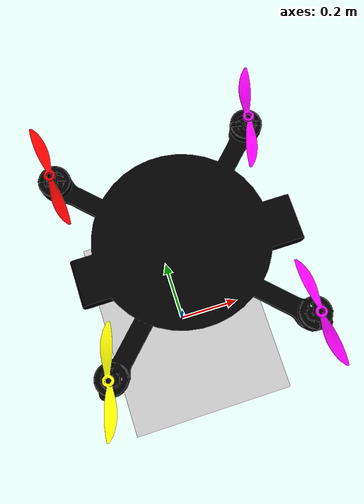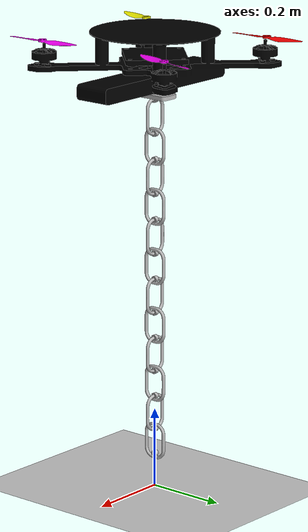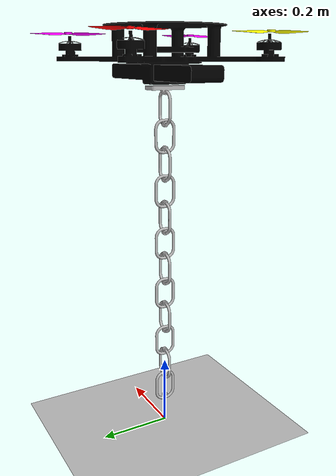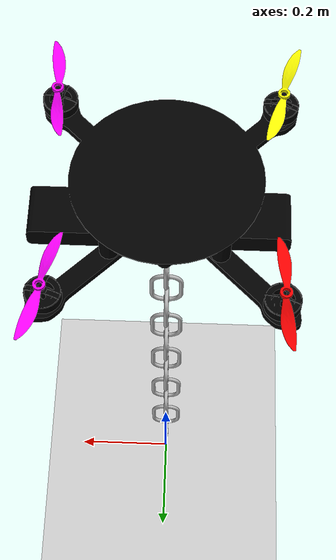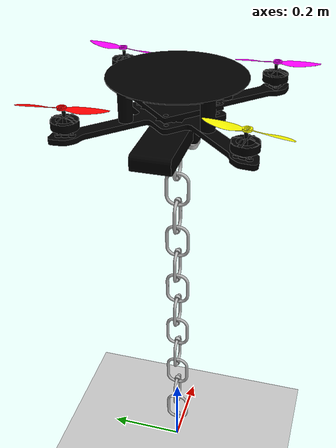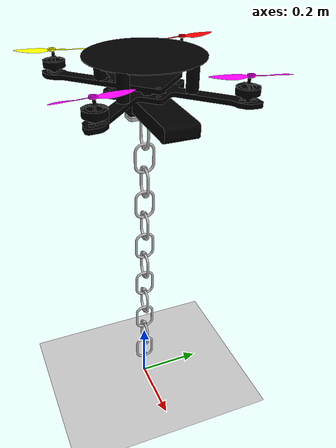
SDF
<?xml version="1.0" ?>
<!--
  Demo world with a widget displaying images coming from a camera sensor.
-->
<sdf version="1.6">
  <world name="pico">
    <physics name="1ms" type="ignored">
      <max_step_size>0.01</max_step_size>
      <real_time_factor>1.0</real_time_factor>
    </physics>
    <plugin
      filename="gz-sim-physics-system"
      name="gz::sim::systems::Physics">
    </plugin>
    <plugin
      filename="gz-sim-sensors-system"
      name="gz::sim::systems::Sensors">
      <render_engine>ogre2</render_engine>
    </plugin>
    <plugin
      filename="gz-sim-user-commands-system"
      name="gz::sim::systems::UserCommands">
    </plugin>
    <plugin
      filename="gz-sim-scene-broadcaster-system"
      name="gz::sim::systems::SceneBroadcaster">
    </plugin>

    <scene>
      <ambient>1.0 1.0 1.0</ambient>
      <background>0.8 0.8 0.8</background>
      <grid>true</grid>
    </scene>

    <gui fullscreen="0">

      <!-- 3D scene -->
      <plugin filename="MinimalScene" name="3D View">
        <gz-gui>
          <title>3D View</title>
          <property type="bool" key="showTitleBar">false</property>
          <property type="string" key="state">docked</property>
        </gz-gui>

        <engine>ogre2</engine>
        <scene>scene</scene>
        <ambient_light>0.4 0.4 0.4</ambient_light>
        <background_color>0.8 0.8 0.8</background_color>
        <camera_pose>-6 0 6 0 0.5 0</camera_pose>
      </plugin>

      <!-- Plugins that add functionality to the scene -->

      <plugin filename="GzSceneManager" name="Scene Manager">
        <gz-gui>
          <property key="resizable" type="bool">false</property>
          <property key="width" type="double">5</property>
          <property key="height" type="double">5</property>
          <property key="state" type="string">floating</property>
          <property key="showTitleBar" type="bool">false</property>
        </gz-gui>
      </plugin>
      <plugin filename="InteractiveViewControl" name="Interactive view control">
        <gz-gui>
          <property key="resizable" type="bool">false</property>
          <property key="width" type="double">5</property>
          <property key="height" type="double">5</property>
          <property key="state" type="string">floating</property>
          <property key="showTitleBar" type="bool">false</property>
        </gz-gui>
      </plugin>

      <!-- World statistics -->
      <plugin filename="WorldStats" name="World stats">

        <sim_time>true</sim_time>
        <real_time>true</real_time>
        <real_time_factor>true</real_time_factor>
        <iterations>true</iterations>
      </plugin>

    </gui>

     <model name="ground_plane">
      <static>true</static>
      <link name="link">
        <collision name="collision">
          <geometry>
            <plane>
              <normal>0 0 1</normal>
              <size>100 100</size>
            </plane>
          </geometry>
        </collision>
        <visual name="visual">
          <geometry>
            <plane>
              <normal>0 0 1</normal>
              <size>100 100</size>
            </plane>
          </geometry>
          <material>
            <ambient>0.8 0.8 0.8 1</ambient>
            <diffuse>0.8 0.8 0.8 1</diffuse>
            <specular>0.8 0.8 0.8 1</specular>
          </material>
        </visual>
      </link>
    </model>

    <include>
      <uri>model://swift_pico_chain</uri>
      <name>swift_pico</name>
      <pose>0 0 1.15 0 0 0</pose>
    </include>

  </world>
</sdf>

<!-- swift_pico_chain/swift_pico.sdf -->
<sdf version='1.6'>
  <model name="swift_pico">
    <pose>0 0 0 0 0 0</pose>
    <link name='swift_pico/base_link'>
      <pose frame=''>0 0 0 0 -0 0</pose>
      <inertial>
        <pose frame=''>0 0 0 0 -0 0</pose>
        <mass>1.5</mass>
        <inertia>
          <ixx>0.0347563</ixx>
          <ixy>0</ixy>
          <ixz>0</ixz>
          <iyy>0.07</iyy>
          <iyz>0</iyz>
          <izz>0.0977</izz>
        </inertia>
      </inertial>
      <collision name='swift_pico/base_link_inertia_collision'>
        <pose frame=''>0 0 -0.12 0 -0 0</pose>
        <geometry>
          <box>
            <size>0.47 0.47 0.11</size>
          </box>
        </geometry>
      </collision>
      <visual name='swift_pico/base_link_inertia_visual'>
        <pose frame=''>0 0 0 0 -0 0</pose>
        <geometry>
          <mesh>
            <scale>5 5 5</scale>
            <uri>model://swift_pico/meshes/base_link.dae</uri>
          </mesh>
        </geometry>
        <material>
            <ambient>0 0 0 1</ambient>
            <diffuse>0 0 0 1</diffuse>
            <specular>0 0 0 1</specular>
          </material>
      </visual>
    </link>

     <joint name="chain_joint" type="fixed">
      <origin xyz="0 0 -0.15" rpy="3.14 0 0" />
      <child>b_link</child>
      <parent>swift_pico/base_link</parent>
		</joint>

    <link name='b_link'>
      <pose frame=''>0 0 -0.15 3.14 0 0</pose>
      <inertial>
        <pose frame=''>0 0 0 0 0 0</pose>
        <mass>0.05</mass>
        <inertia>
          <ixx>3.1137E-05</ixx>
          <ixy>0</ixy>
          <ixz>0</ixz>
          <iyy>3.1137E-05</iyy>
          <iyz>0</iyz>
          <izz>3.1137E-05</izz>
        </inertia>
      </inertial>

      <visual name='b_link_visual'>
        <pose frame=''> 0 0 0 0 0 0</pose>
        <geometry>
          <mesh>
            <scale>1 1 1</scale>
            <uri>model://swift_pico/meshes/b_link.dae</uri>
          </mesh>
        </geometry>
      </visual>
    </link>

  <!-- ################### link ##################-->
    <joint name='j' type='revolute'>
      <origin xyz="0 0 -0.25" rpy="0 0 0" />
      <child>link</child>
      <parent>b_link</parent>
      <axis>
        <xyz>-1 0 0</xyz>
      </axis>
    </joint>

    <link name='link'>
      <pose frame=''>0 0 -0.25 0 -0 0</pose>
      <inertial>
        <pose frame=''>0 0 -0 0 -0 0</pose>
        <mass>0.05</mass>
        <inertia>
          <ixx>1.119E-05</ixx>
          <ixy>0</ixy>
          <ixz>0</ixz>
          <iyy>1.0117E-05</iyy>
          <iyz>0</iyz>
          <izz>1.3292E-05</izz>
        </inertia>
      </inertial>

      <visual name='link_visual'>
        <pose frame=''> 0 0 -0 0 -0 0</pose>
        <geometry>
          <mesh>
            <scale>1 1 1</scale>
            <uri>model://swift_pico/meshes/link.dae</uri>
          </mesh>
        </geometry>

      </visual>

    </link>
  <!-- ################### link ##################-->

  <!-- ################### link 1 ##################-->
    <joint name='j0' type='revolute'>
      <origin xyz="0 0 -0.315" rpy="0 0 0" />
      <child>link_0</child>
      <parent>link</parent>
      <axis>
        <xyz>-1 0 0</xyz>
      </axis>
    </joint>

    <link name='link_0'>
      <pose frame=''>0 0 -0.315 0 -0 0</pose>
      <inertial>
        <pose frame=''>0 0 -0 0 -0 0</pose>
        <mass>0.05</mass>
        <inertia>
          <ixx>1.119E-05</ixx>
          <ixy>0</ixy>
          <ixz>0</ixz>
          <iyy>1.0117E-05</iyy>
          <iyz>0</iyz>
          <izz>1.3292E-05</izz>
        </inertia>
      </inertial>

      <visual name='link_0_visual'>
        <pose frame=''> 0 0 -0 0 -0 0</pose>
        <geometry>
          <mesh>
            <scale>1 1 1</scale>
            <uri>model://swift_pico/meshes/link_0.dae</uri>
          </mesh>
        </geometry>

      </visual>

    </link>
  <!-- ################### link 1 ##################-->

  <!-- ################### link 1 to 10 ##################-->
<joint name='j1' type='revolute'>
  <origin xyz="0 0 -0.4" rpy="0 0 0" />
  <child>link_1</child>
  <parent>link_0</parent>
  <axis>
    <xyz>-1 0 0</xyz>
  </axis>
</joint>

<link name='link_1'>
  <pose frame=''>0 0 -0.4 0 -0 0</pose>
  <inertial>
    <pose frame=''>0 0 -0 0 -0 0</pose>
    <mass>0.05</mass>
    <inertia>
      <ixx>1.119E-05</ixx>
      <ixy>0</ixy>
      <ixz>0</ixz>
      <iyy>1.0117E-05</iyy>
      <iyz>0</iyz>
      <izz>1.3292E-05</izz>
    </inertia>
  </inertial>
  <visual name='link_1_visual'>
    <pose frame=''>0 0 -0 0 -0 0</pose>
    <geometry>
      <mesh>
        <scale>1 1 1</scale>
        <uri>model://swift_pico/meshes/link_1.dae</uri>
      </mesh>
    </geometry>
  </visual>
</link>

<joint name='j2' type='revolute'>
  <origin xyz="0 0 -0.465" rpy="0 0 0" />
  <child>link_2</child>
  <parent>link_1</parent>
  <axis>
    <xyz>-1 0 0</xyz>
  </axis>
</joint>

<link name='link_2'>
  <pose frame=''>0 0 -0.465 0 -0 0</pose>
  <inertial>
    <pose frame=''>0 0 -0 0 -0 0</pose>
    <mass>0.05</mass>
    <inertia>
      <ixx>1.119E-05</ixx>
      <ixy>0</ixy>
      <ixz>0</ixz>
      <iyy>1.0117E-05</iyy>
      <iyz>0</iyz>
      <izz>1.3292E-05</izz>
    </inertia>
  </inertial>
  <visual name='link_2_visual'>
    <pose frame=''>0 0 -0 0 -0 0</pose>
    <geometry>
      <mesh>
        <scale>1 1 1</scale>
        <uri>model://swift_pico/meshes/link_2.dae</uri>
      </mesh>
    </geometry>
  </visual>
</link>

<joint name='j3' type='revolute'>
  <origin xyz="0 0 -0.550" rpy="0 0 0" />
  <child>link_3</child>
  <parent>link_2</parent>
  <axis>
    <xyz>-1 0 0</xyz>
  </axis>
</joint>

<link name='link_3'>
  <pose frame=''>0 0 -0.550 0 -0 0</pose>
  <inertial>
    <pose frame=''>0 0 -0 0 -0 0</pose>
    <mass>0.05</mass>
    <inertia>
      <ixx>1.119E-05</ixx>
      <ixy>0</ixy>
      <ixz>0</ixz>
      <iyy>1.0117E-05</iyy>
      <iyz>0</iyz>
      <izz>1.3292E-05</izz>
    </inertia>
  </inertial>
  <visual name='link_3_visual'>
    <pose frame=''>0 0 -0 0 -0 0</pose>
    <geometry>
      <mesh>
        <scale>1 1 1</scale>
        <uri>model://swift_pico/meshes/link_3.dae</uri>
      </mesh>
    </geometry>
  </visual>
</link>

<joint name='j4' type='revolute'>
  <origin xyz="0 0 -0.615" rpy="0 0 0" />
  <child>link_4</child>
  <parent>link_3</parent>
  <axis>
    <xyz>-1 0 0</xyz>
  </axis>
</joint>

<link name='link_4'>
  <pose frame=''>0 0 -0.615 0 -0 0</pose>
  <inertial>
    <pose frame=''>0 0 -0 0 -0 0</pose>
    <mass>0.05</mass>
    <inertia>
      <ixx>1.119E-05</ixx>
      <ixy>0</ixy>
      <ixz>0</ixz>
      <iyy>1.0117E-05</iyy>
      <iyz>0</iyz>
      <izz>1.3292E-05</izz>
    </inertia>
  </inertial>
  <visual name='link_4_visual'>
    <pose frame=''>0 0 -0 0 -0 0</pose>
    <geometry>
      <mesh>
        <scale>1 1 1</scale>
        <uri>model://swift_pico/meshes/link_4.dae</uri>
      </mesh>
    </geometry>
  </visual>
</link>

<joint name='j5' type='revolute'>
  <origin xyz="0 0 -0.70" rpy="0 0 0" />
  <child>link_5</child>
  <parent>link_4</parent>
  <axis>
    <xyz>-1 0 0</xyz>
  </axis>
</joint>

<link name='link_5'>
  <pose frame=''>0 0 -0.70 0 -0 0</pose>
  <inertial>
    <pose frame=''>0 0 -0 0 -0 0</pose>
    <mass>0.05</mass>
    <inertia>
      <ixx>1.119E-05</ixx>
      <ixy>0</ixy>
      <ixz>0</ixz>
      <iyy>1.0117E-05</iyy>
      <iyz>0</iyz>
      <izz>1.3292E-05</izz>
    </inertia>
  </inertial>
  <visual name='link_5_visual'>
    <pose frame=''>0 0 -0 0 -0 0</pose>
    <geometry>
      <mesh>
        <scale>1 1 1</scale>
        <uri>model://swift_pico/meshes/link_5.dae</uri>
      </mesh>
    </geometry>
  </visual>
</link>

<joint name='j6' type='revolute'>
  <origin xyz="0 0 -0.765" rpy="0 0 0" />
  <child>link_6</child>
  <parent>link_5</parent>
  <axis>
    <xyz>-1 0 0</xyz>
  </axis>
</joint>

<link name='link_6'>
  <pose frame=''>0 0 -0.765 0 -0 0</pose>
  <inertial>
    <pose frame=''>0 0 -0 0 -0 0</pose>
    <mass>0.05</mass>
    <inertia>
      <ixx>1.119E-05</ixx>
      <ixy>0</ixy>
      <ixz>0</ixz>
      <iyy>1.0117E-05</iyy>
      <iyz>0</iyz>
      <izz>1.3292E-05</izz>
    </inertia>
  </inertial>
  <visual name='link_6_visual'>
    <pose frame=''>0 0 -0 0 -0 0</pose>
    <geometry>
      <mesh>
        <scale>1 1 1</scale>
        <uri>model://swift_pico/meshes/link_6.dae</uri>
      </mesh>
    </geometry>
  </visual>
</link>

<joint name='j7' type='revolute'>
  <origin xyz="0 0 -0.850" rpy="0 0 0" />
  <child>link_7</child>
  <parent>link_6</parent>
  <axis>
    <xyz>-1 0 0</xyz>
  </axis>
</joint>

<link name='link_7'>
  <pose frame=''>0 0 -0.85 0 -0 0</pose>
  <inertial>
    <pose frame=''>0 0 -0 0 -0 0</pose>
    <mass>0.05</mass>
    <inertia>
      <ixx>1.119E-05</ixx>
      <ixy>0</ixy>
      <ixz>0</ixz>
      <iyy>1.0117E-05</iyy>
      <iyz>0</iyz>
      <izz>1.3292E-05</izz>
    </inertia>
  </inertial>
  <visual name='link_7_visual'>
    <pose frame=''>0 0 -0 0 -0 0</pose>
    <geometry>
      <mesh>
        <scale>1 1 1</scale>
        <uri>model://swift_pico/meshes/link_7.dae</uri>
      </mesh>
    </geometry>
  </visual>
</link>

<joint name='j8' type='revolute'>
  <origin xyz="0 0 -0.915" rpy="0 0 0" />
  <child>link_8</child>
  <parent>link_7</parent>
  <axis>
    <xyz>-1 0 0</xyz>
  </axis>
</joint>

<link name='link_8'>
  <pose frame=''>0 0 -0.915 0 -0 0</pose>
  <inertial>
    <pose frame=''>0 0 -0 0 -0 0</pose>
    <mass>0.05</mass>
    <inertia>
      <ixx>1.119E-05</ixx>
      <ixy>0</ixy>
      <ixz>0</ixz>
      <iyy>1.0117E-05</iyy>
      <iyz>0</iyz>
      <izz>1.3292E-05</izz>
    </inertia>
  </inertial>
  <visual name='link_8_visual'>
    <pose frame=''>0 0 -0 0 -0 0</pose>
    <geometry>
      <mesh>
        <scale>1 1 1</scale>
        <uri>model://swift_pico/meshes/link_8.dae</uri>
      </mesh>
    </geometry>
  </visual>
</link>

<joint name='j9' type='revolute'>
  <origin xyz="0 0 -1.0" rpy="0 0 0" />
  <child>link_9</child>
  <parent>link_8</parent>
  <axis>
    <xyz>-1 0 0</xyz>
  </axis>
</joint>

<link name='link_9'>
  <pose frame=''>0 0 -1.0 0 -0 0</pose>
  <inertial>
    <pose frame=''>0 0 -0 0 -0 0</pose>
    <mass>0.05</mass>
    <inertia>
      <ixx>1.119E-05</ixx>
      <ixy>0</ixy>
      <ixz>0</ixz>
      <iyy>1.0117E-05</iyy>
      <iyz>0</iyz>
      <izz>1.3292E-05</izz>
    </inertia>
  </inertial>
  <visual name='link_9_visual'>
    <pose frame=''>0 0 -0 0 -0 0</pose>
    <geometry>
      <mesh>
        <scale>1 1 1</scale>
        <uri>model://swift_pico/meshes/link_9.dae</uri>
      </mesh>
    </geometry>
  </visual>
</link>

<joint name='j10' type='revolute'>
  <origin xyz="0 0 -1.065" rpy="0 0 0" />
  <child>link_10</child>
  <parent>link_9</parent>
  <axis>
    <xyz>-1 0 0</xyz>
  </axis>
</joint>

<link name='link_10'>
  <pose frame=''>0 0 -1.065 0 -0 0</pose>
  <inertial>
    <pose frame=''>0 0 -0 0 -0 0</pose>
    <mass>0.05</mass>
    <inertia>
      <ixx>1.119E-05</ixx>
      <ixy>0</ixy>
      <ixz>0</ixz>
      <iyy>1.0117E-05</iyy>
      <iyz>0</iyz>
      <izz>1.3292E-05</izz>
    </inertia>
  </inertial>
  <visual name='link_10_visual'>
    <pose frame=''>0 0 -0 0 -0 0</pose>
    <geometry>
      <mesh>
        <scale>1 1 1</scale>
        <uri>model://swift_pico/meshes/link_10.dae</uri>
      </mesh>
    </geometry>
  </visual>
</link>

    <link name='swift_pico/m1'>
      <pose frame=''>0.19 -0.19 -0.12 0 -0 0</pose>
      <inertial>
        <pose frame=''>0 0 0.1 0 -0 0</pose>
        <mass>0.005</mass>
        <inertia>
          <ixx>9.75e-07</ixx>
          <ixy>0</ixy>
          <ixz>0</ixz>
          <iyy>4.17041e-05</iyy>
          <iyz>0</iyz>
          <izz>4.26041e-05</izz>
        </inertia>
      </inertial>
      <collision name='swift_pico/m1_collision'>
        <pose frame=''>0 0 0.1 0 -0 0</pose>
        <geometry>
          <cylinder>
            <length>0.005</length>
            <radius>0.1</radius>
          </cylinder>
        </geometry>
        <surface>
          <contact>
            <ode/>
          </contact>
          <friction>
            <ode/>
          </friction>
        </surface>
      </collision>
      <visual name='swift_pico/m1_visual'>
        <pose frame=''>0 0 0.1 0 -0 0</pose>
        <geometry>
          <mesh>
            <scale>5 5 5</scale>
            <uri>model://swift_pico/meshes/m1_link.dae</uri>
          </mesh>
        </geometry>
        <material>
            <ambient>1 0 1 1</ambient>
            <diffuse>1 0 1 1</diffuse>
            <specular>1 0 1 1</specular>
          </material>
      </visual>
      <gravity>1</gravity>
      <velocity_decay/>
    </link>
    <joint name='swift_pico/m1_joint' type='revolute'>
      <child>swift_pico/m1</child>
      <parent>swift_pico/base_link</parent>
      <axis>
        <xyz>0 0 1</xyz>
        <limit>
          <lower>-1e+16</lower>
          <upper>1e+16</upper>
        </limit>
        <dynamics>
          <spring_reference>0</spring_reference>
          <spring_stiffness>0</spring_stiffness>
        </dynamics>
        <use_parent_model_frame>1</use_parent_model_frame>
      </axis>
    </joint>
    <link name='swift_pico/m2'>
      <pose frame=''>-0.19 0.19 -0.12 0 -0 0</pose>
      <inertial>
        <pose frame=''>0 0 0.1 0 -0 0</pose>
        <mass>0.005</mass>
        <inertia>
          <ixx>9.75e-07</ixx>
          <ixy>0</ixy>
          <ixz>0</ixz>
          <iyy>4.17041e-05</iyy>
          <iyz>0</iyz>
          <izz>4.26041e-05</izz>
        </inertia>
      </inertial>
      <collision name='swift_pico/m2_collision'>
        <pose frame=''>0 0 0.1 0 -0 0</pose>
        <geometry>
          <cylinder>
            <length>0.005</length>
            <radius>0.1</radius>
          </cylinder>
        </geometry>
        <surface>
          <contact>
            <ode/>
          </contact>
          <friction>
            <ode/>
          </friction>
        </surface>
      </collision>
      <visual name='swift_pico/m2_visual'>
        <pose frame=''>0 0 0.1 0 -0 0</pose>
        <geometry>
          <mesh>
            <scale>5 5 5</scale>
            <uri>model://swift_pico/meshes/m1_link.dae</uri>
          </mesh>
        </geometry>
        <material>
            <ambient>1 0 0 1</ambient>
            <diffuse>1 0 0 1</diffuse>
            <specular>1 0 0 1</specular>
          </material>
      </visual>
      <gravity>1</gravity>
      <velocity_decay/>
    </link>
    <joint name='swift_pico/m2_joint' type='revolute'>
      <child>swift_pico/m2</child>
      <parent>swift_pico/base_link</parent>
      <axis>
        <xyz>0 0 1</xyz>
        <limit>
          <lower>-1e+16</lower>
          <upper>1e+16</upper>
        </limit>
        <dynamics>
          <spring_reference>0</spring_reference>
          <spring_stiffness>0</spring_stiffness>
        </dynamics>
        <use_parent_model_frame>1</use_parent_model_frame>
      </axis>
    </joint>
    <link name='swift_pico/m3'>
      <pose frame=''>0.19 0.19 -0.12 0 -0 0</pose>
      <inertial>
        <pose frame=''>0 0 0.1 0 -0 0</pose>
        <mass>0.005</mass>
        <inertia>
          <ixx>9.75e-07</ixx>
          <ixy>0</ixy>
          <ixz>0</ixz>
          <iyy>4.17041e-05</iyy>
          <iyz>0</iyz>
          <izz>4.26041e-05</izz>
        </inertia>
      </inertial>
      <collision name='swift_pico/m3_collision'>
        <pose frame=''>0 0 0.1 0 -0 0</pose>
        <geometry>
          <cylinder>
            <length>0.005</length>
            <radius>0.1</radius>
          </cylinder>
        </geometry>
        <surface>
          <contact>
            <ode/>
          </contact>
          <friction>
            <ode/>
          </friction>
        </surface>
      </collision>
      <visual name='swift_pico/m3_visual'>
        <pose frame=''>0 0 0.1 0 -0 0</pose>
        <geometry>
          <mesh>
            <scale>5 5 5</scale>
            <uri>model://swift_pico/meshes/m4_link.dae</uri>
          </mesh>
        </geometry>
        <material>
            <ambient>1 0 1 1</ambient>
            <diffuse>1 0 1 1</diffuse>
            <specular>1 0 1 1</specular>
          </material>
      </visual>
      <gravity>1</gravity>
      <velocity_decay/>
    </link>
    <joint name='swift_pico/m3_joint' type='revolute'>
      <child>swift_pico/m3</child>
      <parent>swift_pico/base_link</parent>
      <axis>
        <xyz>0 0 1</xyz>
        <limit>
          <lower>-1e+16</lower>
          <upper>1e+16</upper>
        </limit>
        <dynamics>
          <spring_reference>0</spring_reference>
          <spring_stiffness>0</spring_stiffness>
        </dynamics>
        <use_parent_model_frame>1</use_parent_model_frame>
      </axis>
    </joint>
    <link name='swift_pico/m4'>
      <pose frame=''>-0.19 -0.19 -0.12 0 -0 0</pose>
      <inertial>
        <pose frame=''>0 0 0.1 0 -0 0</pose>
        <mass>0.005</mass>
        <inertia>
          <ixx>9.75e-07</ixx>
          <ixy>0</ixy>
          <ixz>0</ixz>
          <iyy>4.17041e-05</iyy>
          <iyz>0</iyz>
          <izz>4.26041e-05</izz>
        </inertia>
      </inertial>
      <collision name='swift_pico/m4_collision'>
        <pose frame=''>0 0 0.1 0 -0 0</pose>
        <geometry>
          <cylinder>
            <length>0.005</length>
            <radius>0.1</radius>
          </cylinder>
        </geometry>
        <surface>
          <contact>
            <ode/>
          </contact>
          <friction>
            <ode/>
          </friction>
        </surface>
      </collision>
      <visual name='swift_pico/m4_visual'>
        <pose frame=''>0 0 0.1 0 -0 0</pose>
        <geometry>
          <mesh>
            <scale>5 5 5</scale>
            <uri>model://swift_pico/meshes/m4_link.dae</uri>
          </mesh>
        </geometry>
       <material>
          <ambient>1 1 0 1</ambient>
          <diffuse>1 1 0 1</diffuse>
          <specular>1 1 0 1</specular>
      </material>
      </visual>
      <gravity>1</gravity>
      <velocity_decay/>
    </link>
    <joint name='swift_pico/m4_joint' type='revolute'>
      <child>swift_pico/m4</child>
      <parent>swift_pico/base_link</parent>
      <axis>
        <xyz>0 0 1</xyz>
        <limit>
          <lower>-1e+16</lower>
          <upper>1e+16</upper>
        </limit>
        <dynamics>
          <spring_reference>0</spring_reference>
          <spring_stiffness>0</spring_stiffness>
        </dynamics>
        <use_parent_model_frame>1</use_parent_model_frame>
      </axis>
    </joint>
      <plugin
        filename="ignition-gazebo-multicopter-motor-model-system"
        name="gz::sim::systems::MulticopterMotorModel">
        <robotNamespace>rotors</robotNamespace>
        <jointName>swift_pico/m1_joint</jointName>
        <linkName>swift_pico/m1</linkName>
        <turningDirection>ccw</turningDirection>
        <timeConstantUp>0.0125</timeConstantUp>
        <timeConstantDown>0.025</timeConstantDown>
        <maxRotVelocity>800.0</maxRotVelocity>
        <motorConstant>8.54858e-06</motorConstant>
        <momentConstant>0.016</momentConstant>
        <commandSubTopic>command/motor_speed</commandSubTopic>
        <motorNumber>0</motorNumber>
        <rotorDragCoefficient>8.06428e-05</rotorDragCoefficient>
        <rollingMomentCoefficient>1e-06</rollingMomentCoefficient>
        <motorSpeedPubTopic>motor_speed/0</motorSpeedPubTopic>
        <rotorVelocitySlowdownSim>10</rotorVelocitySlowdownSim>
        <motorType>velocity</motorType>
      </plugin>
      <plugin
        filename="ignition-gazebo-multicopter-motor-model-system"
        name="gz::sim::systems::MulticopterMotorModel">
        <robotNamespace>rotors</robotNamespace>
        <jointName>swift_pico/m2_joint</jointName>
        <linkName>swift_pico/m2</linkName>
        <turningDirection>ccw</turningDirection>
        <timeConstantUp>0.0125</timeConstantUp>
        <timeConstantDown>0.025</timeConstantDown>
        <maxRotVelocity>800.0</maxRotVelocity>
        <motorConstant>8.54858e-06</motorConstant>
        <momentConstant>0.016</momentConstant>
        <commandSubTopic>command/motor_speed</commandSubTopic>
        <motorNumber>1</motorNumber>
        <rotorDragCoefficient>8.06428e-05</rotorDragCoefficient>
        <rollingMomentCoefficient>1e-06</rollingMomentCoefficient>
        <motorSpeedPubTopic>motor_speed/1</motorSpeedPubTopic>
        <rotorVelocitySlowdownSim>10</rotorVelocitySlowdownSim>
        <motorType>velocity</motorType>
      </plugin>
      <plugin
        filename="ignition-gazebo-multicopter-motor-model-system"
        name="gz::sim::systems::MulticopterMotorModel">
        <robotNamespace>rotors</robotNamespace>
        <jointName>swift_pico/m3_joint</jointName>
        <linkName>swift_pico/m3</linkName>
        <turningDirection>cw</turningDirection>
        <timeConstantUp>0.0125</timeConstantUp>
        <timeConstantDown>0.025</timeConstantDown>
        <maxRotVelocity>800.0</maxRotVelocity>
        <motorConstant>8.54858e-06</motorConstant>
        <momentConstant>0.016</momentConstant>
        <commandSubTopic>command/motor_speed</commandSubTopic>
        <motorNumber>2</motorNumber>
        <rotorDragCoefficient>8.06428e-05</rotorDragCoefficient>
        <rollingMomentCoefficient>1e-06</rollingMomentCoefficient>
        <motorSpeedPubTopic>motor_speed/2</motorSpeedPubTopic>
        <rotorVelocitySlowdownSim>10</rotorVelocitySlowdownSim>
        <motorType>velocity</motorType>
      </plugin>
      <plugin
        filename="ignition-gazebo-multicopter-motor-model-system"
        name="gz::sim::systems::MulticopterMotorModel">
        <robotNamespace>rotors</robotNamespace>
        <jointName>swift_pico/m4_joint</jointName>
        <linkName>swift_pico/m4</linkName>
        <turningDirection>cw</turningDirection>
        <timeConstantUp>0.0125</timeConstantUp>
        <timeConstantDown>0.025</timeConstantDown>
        <maxRotVelocity>800.0</maxRotVelocity>
        <motorConstant>8.54858e-06</motorConstant>
        <momentConstant>0.016</momentConstant>
        <commandSubTopic>command/motor_speed</commandSubTopic>
        <motorNumber>3</motorNumber>
        <rotorDragCoefficient>8.06428e-05</rotorDragCoefficient>
        <rollingMomentCoefficient>1e-06</rollingMomentCoefficient>
        <motorSpeedPubTopic>motor_speed/3</motorSpeedPubTopic>
        <rotorVelocitySlowdownSim>10</rotorVelocitySlowdownSim>
        <motorType>velocity</motorType>
      </plugin>

      <plugin
        filename="ignition-gazebo-odometry-publisher-system"
        name="ignition::gazebo::systems::OdometryPublisher">
        <dimensions>3</dimensions>
      </plugin>

  </model>
</sdf>
